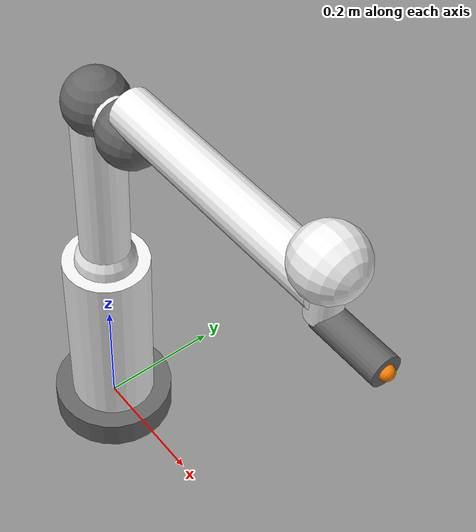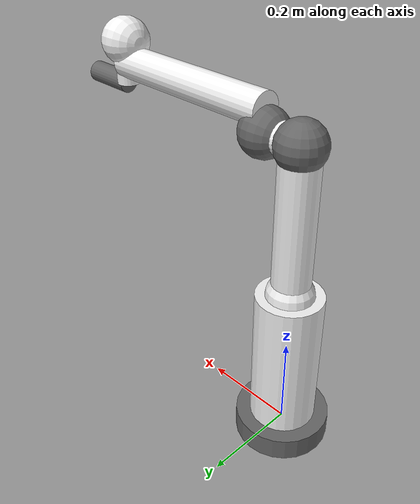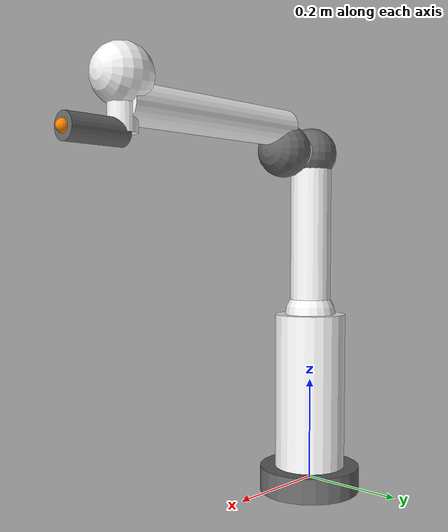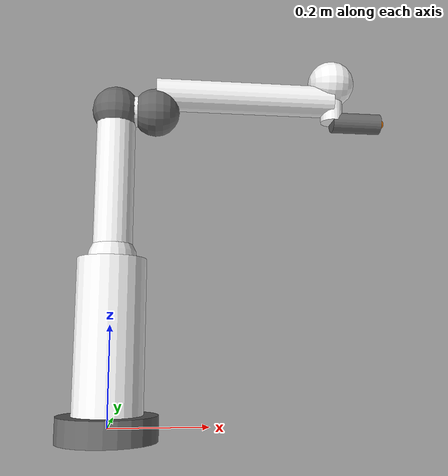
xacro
<?xml version="1.0" ?>
<robot name="poe_panda_robot" xmlns:xacro="http://ros.org/wiki/xacro">

  <xacro:property name="PI"      value="3.14159265358979"/>
  <xacro:property name="D1"      value="0.333"/>   <!-- base to J0 -->
  <xacro:property name="D3"      value="0.316"/>   <!-- J1 to J2 -->
  <xacro:property name="A3"      value="0.0825"/>  <!-- J2→J3 X offset -->
  <xacro:property name="D5"      value="0.384"/>   <!-- J3→J4 Z (approximate) -->
  <xacro:property name="A6"      value="0.088"/>   <!-- J5→J6 X offset -->
  <xacro:property name="D_TOOL"  value="0.107"/>   <!-- J6 to flange -->
  <xacro:property name="R"       value="0.040"/>
  <xacro:property name="R_JNT"   value="0.050"/>
  <xacro:property name="M"       value="2.0"/>

  <link name="world"/>
  <joint name="world_to_base" type="fixed">
    <parent link="world"/>
    <child  link="base_link"/>
    <origin xyz="0 0 0" rpy="0 0 0"/>
  </joint>

  <!-- base pedestal -->
  <link name="base_link">
    <inertial>
      <origin xyz="0 0 ${D1/2}" rpy="0 0 0"/>
      <mass value="10.0"/>
      <inertia ixx="0.12" ixy="0" ixz="0" iyy="0.12" iyz="0" izz="0.05"/>
    </inertial>
    <visual>
      <origin xyz="0 0 ${D1/2}" rpy="0 0 0"/>
      <geometry><cylinder radius="0.070" length="${D1}"/></geometry>
      <material name="panda_white"><color rgba="0.95 0.95 0.95 1"/></material>
    </visual>
    <visual>
      <origin xyz="0 0 0" rpy="0 0 0"/>
      <geometry><cylinder radius="0.100" length="0.05"/></geometry>
      <material name="panda_grey"><color rgba="0.4 0.4 0.4 1"/></material>
    </visual>
    <collision>
      <origin xyz="0 0 ${D1/2}" rpy="0 0 0"/>
      <geometry><cylinder radius="0.070" length="${D1}"/></geometry>
    </collision>
  </link>

  <!-- J0: waist — revolute Z -->
  <joint name="JOINT_0_ACT" type="revolute">
    <parent link="base_link"/>
    <child  link="link_1"/>
    <origin xyz="0 0 ${D1}" rpy="0 0 0"/>
    <axis xyz="0 0 1"/>
    <limit lower="${-2.90}" upper="${2.90}" effort="87" velocity="2.62"/>
    <dynamics damping="1.0" friction="0.3"/>
  </joint>

  <!-- link_1: waist→shoulder (J0,J1 concurrent) -->
  <link name="link_1">
    <inertial>
      <origin xyz="0 0 0" rpy="0 0 0"/>
      <mass value="${M}"/>
      <inertia ixx="0.01" ixy="0" ixz="0" iyy="0.01" iyz="0" izz="0.005"/>
    </inertial>
    <visual>
      <origin xyz="0 0 0" rpy="0 0 0"/>
      <geometry><sphere radius="${R_JNT}"/></geometry>
      <material name="panda_white"><color rgba="0.95 0.95 0.95 1"/></material>
    </visual>
    <collision>
      <origin xyz="0 0 0" rpy="0 0 0"/>
      <geometry><sphere radius="${R_JNT}"/></geometry>
    </collision>
  </link>

  <!-- J1: shoulder tilt — revolute Y (concurrent with J0) -->
  <joint name="JOINT_1_ACT" type="revolute">
    <parent link="link_1"/>
    <child  link="link_2"/>
    <origin xyz="0 0 0" rpy="0 0 0"/>
    <axis xyz="0 1 0"/>
    <limit lower="${-1.76}" upper="${1.76}" effort="87" velocity="2.62"/>
    <dynamics damping="1.0" friction="0.3"/>
  </joint>

  <!-- link_2: vertical section J1→J2 (height D3) -->
  <link name="link_2">
    <inertial>
      <origin xyz="0 0 ${D3/2}" rpy="0 0 0"/>
      <mass value="${M * 1.2}"/>
      <inertia ixx="0.03" ixy="0" ixz="0" iyy="0.03" iyz="0" izz="0.006"/>
    </inertial>
    <visual>
      <origin xyz="0 0 ${D3/2}" rpy="0 0 0"/>
      <geometry><cylinder radius="${R}" length="${D3}"/></geometry>
      <material name="panda_white"><color rgba="0.95 0.95 0.95 1"/></material>
    </visual>
    <visual>
      <origin xyz="0 0 0" rpy="0 0 0"/>
      <geometry><sphere radius="${R_JNT}"/></geometry>
      <material name="panda_grey"><color rgba="0.4 0.4 0.4 1"/></material>
    </visual>
    <collision>
      <origin xyz="0 0 ${D3/2}" rpy="0 0 0"/>
      <geometry><cylinder radius="${R}" length="${D3}"/></geometry>
    </collision>
  </link>

  <!-- J2: shoulder pan — revolute Z (at top of D3 column) -->
  <joint name="JOINT_2_ACT" type="revolute">
    <parent link="link_2"/>
    <child  link="link_3"/>
    <origin xyz="0 0 ${D3}" rpy="0 0 0"/>
    <axis xyz="0 0 1"/>
    <limit lower="${-2.90}" upper="${2.90}" effort="87" velocity="2.62"/>
    <dynamics damping="0.8" friction="0.2"/>
  </joint>

  <!-- link_3: lateral stub J2→J3 (offset +X by A3) -->
  <link name="link_3">
    <inertial>
      <origin xyz="${A3/2} 0 0" rpy="0 ${PI/2} 0"/>
      <mass value="${M}"/>
      <inertia ixx="0.01" ixy="0" ixz="0" iyy="0.01" iyz="0" izz="0.003"/>
    </inertial>
    <visual>
      <origin xyz="${A3/2} 0 0" rpy="0 ${PI/2} 0"/>
      <geometry><cylinder radius="${R*0.8}" length="${A3}"/></geometry>
      <material name="panda_white"><color rgba="0.95 0.95 0.95 1"/></material>
    </visual>
    <visual>
      <origin xyz="0 0 0" rpy="0 0 0"/>
      <geometry><sphere radius="${R_JNT}"/></geometry>
      <material name="panda_grey"><color rgba="0.4 0.4 0.4 1"/></material>
    </visual>
    <collision>
      <origin xyz="${A3/2} 0 0" rpy="0 ${PI/2} 0"/>
      <geometry><cylinder radius="${R*0.8}" length="${A3}"/></geometry>
    </collision>
  </link>

  <!-- J3: elbow — revolute -Y (at end of lateral stub) -->
  <joint name="JOINT_3_ACT" type="revolute">
    <parent link="link_3"/>
    <child  link="link_4"/>
    <origin xyz="${A3} 0 0" rpy="0 0 0"/>
    <axis xyz="0 -1 0"/>
    <limit lower="${-3.07}" upper="${-0.07}" effort="87" velocity="2.62"/>
    <dynamics damping="0.8" friction="0.2"/>
  </joint>

  <!-- link_4: forearm — J3→J4 (cancel X, add Z height D5) -->
  <link name="link_4">
    <inertial>
      <origin xyz="${-A3/2} 0 ${D5/2}" rpy="0 0 0"/>
      <mass value="${M * 1.3}"/>
      <inertia ixx="0.04" ixy="0" ixz="0" iyy="0.04" iyz="0" izz="0.006"/>
    </inertial>
    <!-- diagonal tube from J3 to J4 -->
    <visual>
      <origin xyz="${-A3/2} 0 ${D5/2}" rpy="0 0 0"/>
      <geometry><cylinder radius="${R*0.85}" length="${D5}"/></geometry>
      <material name="panda_white"><color rgba="0.95 0.95 0.95 1"/></material>
    </visual>
    <visual>
      <origin xyz="0 0 0" rpy="0 0 0"/>
      <geometry><sphere radius="${R_JNT}"/></geometry>
      <material name="panda_grey"><color rgba="0.4 0.4 0.4 1"/></material>
    </visual>
    <collision>
      <origin xyz="${-A3/2} 0 ${D5/2}" rpy="0 0 0"/>
      <geometry><cylinder radius="${R*0.85}" length="${D5}"/></geometry>
    </collision>
  </link>

  <!-- J4: forearm roll — revolute Z (J4,J5 concurrent) -->
  <joint name="JOINT_4_ACT" type="revolute">
    <parent link="link_4"/>
    <child  link="link_5"/>
    <origin xyz="${-A3} 0 ${D5}" rpy="0 0 0"/>
    <axis xyz="0 0 1"/>
    <limit lower="${-2.90}" upper="${2.90}" effort="12" velocity="3.40"/>
    <dynamics damping="0.5" friction="0.1"/>
  </joint>

  <!-- link_5: wrist tilt hub (J4=J5 concurrent) -->
  <link name="link_5">
    <inertial>
      <origin xyz="0 0 0" rpy="0 0 0"/>
      <mass value="0.6"/>
      <inertia ixx="0.002" ixy="0" ixz="0" iyy="0.002" iyz="0" izz="0.001"/>
    </inertial>
    <visual>
      <origin xyz="0 0 0" rpy="0 0 0"/>
      <geometry><sphere radius="${R_JNT}"/></geometry>
      <material name="panda_white"><color rgba="0.95 0.95 0.95 1"/></material>
    </visual>
    <collision>
      <origin xyz="0 0 0" rpy="0 0 0"/>
      <geometry><sphere radius="${R_JNT}"/></geometry>
    </collision>
  </link>

  <!-- J5: wrist tilt — revolute Y (concurrent with J4) -->
  <joint name="JOINT_5_ACT" type="revolute">
    <parent link="link_5"/>
    <child  link="link_6"/>
    <origin xyz="0 0 0" rpy="0 0 0"/>
    <axis xyz="0 1 0"/>
    <limit lower="${-0.02}" upper="${3.75}" effort="12" velocity="3.40"/>
    <dynamics damping="0.5" friction="0.1"/>
  </joint>

  <!-- link_6: wrist lateral stub J5→J6 (+X by A6) -->
  <link name="link_6">
    <inertial>
      <origin xyz="${A6/2} 0 0" rpy="0 ${PI/2} 0"/>
      <mass value="0.4"/>
      <inertia ixx="0.001" ixy="0" ixz="0" iyy="0.001" iyz="0" izz="0.0005"/>
    </inertial>
    <visual>
      <origin xyz="${A6/2} 0 0" rpy="0 ${PI/2} 0"/>
      <geometry><cylinder radius="${R*0.6}" length="${A6}"/></geometry>
      <material name="panda_white"><color rgba="0.95 0.95 0.95 1"/></material>
    </visual>
    <visual>
      <origin xyz="0 0 0" rpy="0 0 0"/>
      <geometry><sphere radius="${R_JNT*0.9}"/></geometry>
      <material name="panda_grey"><color rgba="0.4 0.4 0.4 1"/></material>
    </visual>
    <collision>
      <origin xyz="${A6/2} 0 0" rpy="0 ${PI/2} 0"/>
      <geometry><cylinder radius="${R*0.6}" length="${A6}"/></geometry>
    </collision>
  </link>

  <!-- J6: wrist roll — revolute Z -->
  <joint name="JOINT_6_ACT" type="revolute">
    <parent link="link_6"/>
    <child  link="link_7"/>
    <origin xyz="${A6} 0 0" rpy="0 0 0"/>
    <axis xyz="0 0 1"/>
    <limit lower="${-2.90}" upper="${2.90}" effort="12" velocity="3.40"/>
    <dynamics damping="0.2" friction="0.05"/>
  </joint>

  <!-- link_7: flange + TCP marker -->
  <link name="link_7">
    <inertial>
      <origin xyz="0 0 ${D_TOOL/2}" rpy="0 0 0"/>
      <mass value="0.15"/>
      <inertia ixx="0.0005" ixy="0" ixz="0" iyy="0.0005" iyz="0" izz="0.0002"/>
    </inertial>
    <visual>
      <origin xyz="0 0 ${D_TOOL/2}" rpy="0 0 0"/>
      <geometry><cylinder radius="0.022" length="${D_TOOL}"/></geometry>
      <material name="panda_grey"><color rgba="0.4 0.4 0.4 1"/></material>
    </visual>
    <visual>
      <origin xyz="0 0 ${D_TOOL}" rpy="0 0 0"/>
      <geometry><sphere radius="0.011"/></geometry>
      <material name="orange"><color rgba="1.0 0.5 0.0 1"/></material>
    </visual>
    <collision>
      <origin xyz="0 0 ${D_TOOL/2}" rpy="0 0 0"/>
      <geometry><cylinder radius="0.022" length="${D_TOOL}"/></geometry>
    </collision>
  </link>

</robot>
